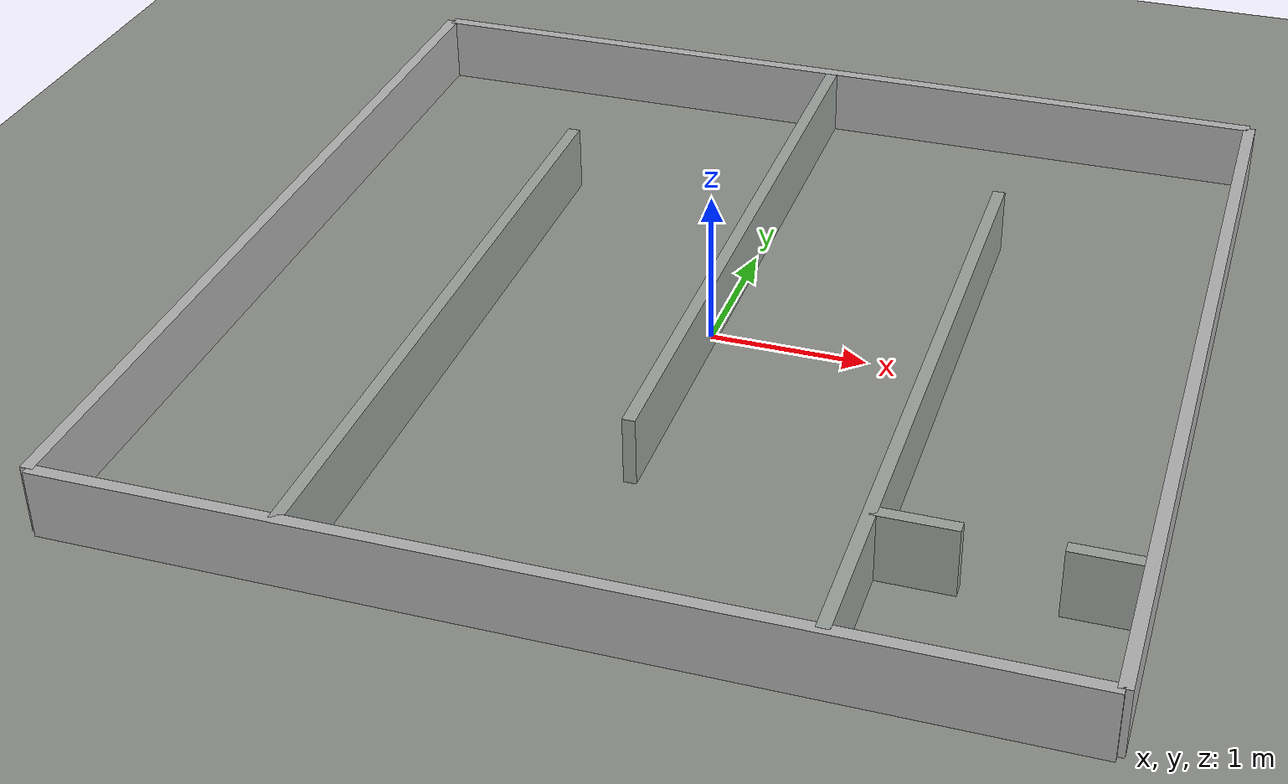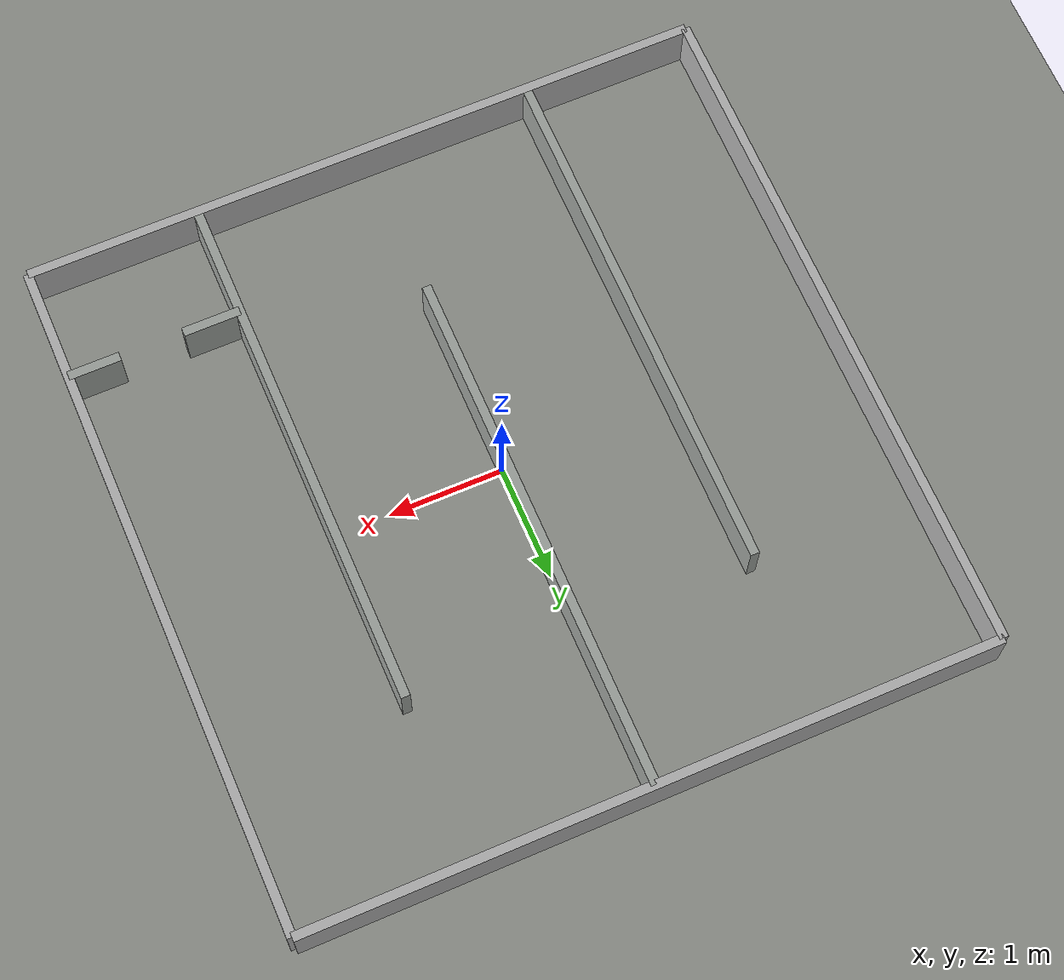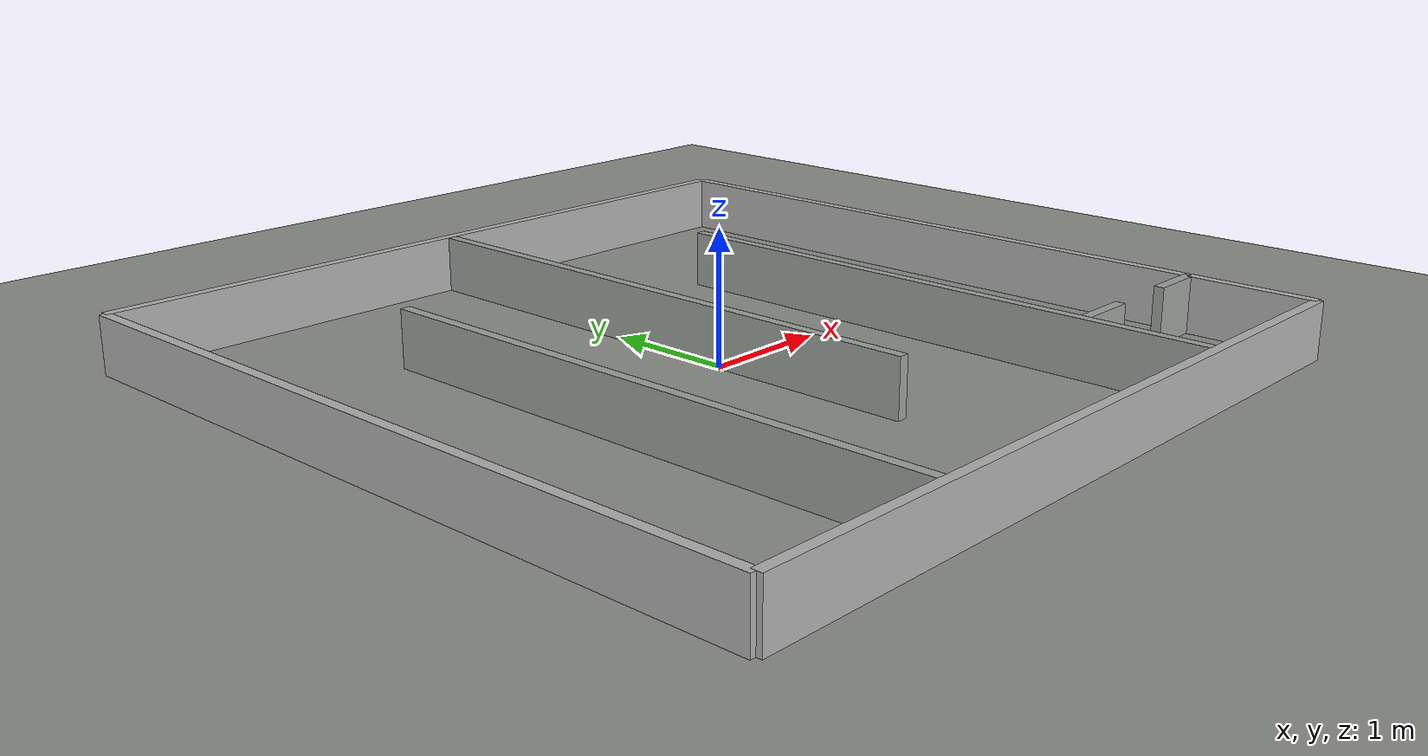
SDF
<?xml version="1.0" ?>
<sdf version="1.8">
  <world name="rosy_maze">
    <physics name="1ms" type="ignored">
      <max_step_size>0.001</max_step_size>
      <real_time_factor>1.0</real_time_factor>
    </physics>

    <plugin filename="gz-sim-physics-system" name="gz::sim::systems::Physics"></plugin>
    <plugin filename="gz-sim-sensors-system" name="gz::sim::systems::Sensors">
      <render_engine>ogre2</render_engine>
    </plugin>
    <plugin filename="gz-sim-user-commands-system" name="gz::sim::systems::UserCommands"></plugin>
    <plugin filename="gz-sim-scene-broadcaster-system" name="gz::sim::systems::SceneBroadcaster"></plugin>
    <plugin filename="gz-sim-imu-system" name="gz::sim::systems::Imu"></plugin>

    <light type="directional" name="sun">
      <cast_shadows>false</cast_shadows>
      <pose>0 0 3 0 0 0</pose>
      <diffuse>1 1 1 1</diffuse>
      <specular>1 1 1 1</specular>
      <attenuation>
        <range>1000</range><constant>1</constant><linear>0</linear><quadratic>0</quadratic>
      </attenuation>
      <direction>0 0 -1</direction>
    </light>

    <model name="ground_plane">
      <static>true</static>
      <link name="ground_link">
        <collision name="ground_collision">
          <geometry><plane><normal>0 0 1</normal><size>12 12</size></plane></geometry>
        </collision>
        <visual name="ground_visual">
          <geometry><plane><normal>0 0 1</normal><size>12 12</size></plane></geometry>
          <material>
            <diffuse>0.55 0.56 0.54 1</diffuse>
            <specular>0.1 0.1 0.1 1</specular>
          </material>
        </visual>
      </link>
    </model>

    <!-- 바깥 벽 6 x 6 -->
    <model name="wall_front">
      <static>true</static><pose>0 3 0.22 0 0 0</pose>
      <link name="l"><visual name="v"><geometry><box><size>6 0.08 0.44</size></box></geometry>
        <material><diffuse>0.7 0.7 0.7 1</diffuse></material></visual>
        <collision name="c"><geometry><box><size>6 0.08 0.44</size></box></geometry></collision></link>
    </model>
    <model name="wall_back">
      <static>true</static><pose>0 -3 0.22 0 0 0</pose>
      <link name="l"><visual name="v"><geometry><box><size>6 0.08 0.44</size></box></geometry>
        <material><diffuse>0.7 0.7 0.7 1</diffuse></material></visual>
        <collision name="c"><geometry><box><size>6 0.08 0.44</size></box></geometry></collision></link>
    </model>
    <model name="wall_left">
      <static>true</static><pose>-3 0 0.22 0 0 1.5708</pose>
      <link name="l"><visual name="v"><geometry><box><size>6 0.08 0.44</size></box></geometry>
        <material><diffuse>0.7 0.7 0.7 1</diffuse></material></visual>
        <collision name="c"><geometry><box><size>6 0.08 0.44</size></box></geometry></collision></link>
    </model>
    <model name="wall_right">
      <static>true</static><pose>3 0 0.22 0 0 1.5708</pose>
      <link name="l"><visual name="v"><geometry><box><size>6 0.08 0.44</size></box></geometry>
        <material><diffuse>0.7 0.7 0.7 1</diffuse></material></visual>
        <collision name="c"><geometry><box><size>6 0.08 0.44</size></box></geometry></collision></link>
    </model>

    <!-- 뱀형 칸막이. V1/V3 은 위가 열리고 V2 는 아래가 열린다 -->
    <model name="maze_v1">
      <static>true</static><pose>-1.5 -0.7 0.22 0 0 1.5708</pose>
      <link name="l"><visual name="v"><geometry><box><size>4.6 0.08 0.44</size></box></geometry>
        <material><diffuse>0.62 0.64 0.62 1</diffuse></material></visual>
        <collision name="c"><geometry><box><size>4.6 0.08 0.44</size></box></geometry></collision></link>
    </model>
    <model name="maze_v2">
      <static>true</static><pose>0 0.7 0.22 0 0 1.5708</pose>
      <link name="l"><visual name="v"><geometry><box><size>4.6 0.08 0.44</size></box></geometry>
        <material><diffuse>0.62 0.64 0.62 1</diffuse></material></visual>
        <collision name="c"><geometry><box><size>4.6 0.08 0.44</size></box></geometry></collision></link>
    </model>
    <model name="maze_v3">
      <static>true</static><pose>1.5 -0.7 0.22 0 0 1.5708</pose>
      <link name="l"><visual name="v"><geometry><box><size>4.6 0.08 0.44</size></box></geometry>
        <material><diffuse>0.62 0.64 0.62 1</diffuse></material></visual>
        <collision name="c"><geometry><box><size>4.6 0.08 0.44</size></box></geometry></collision></link>
    </model>

    <!-- 폭 0.55 m 문: y=-2.0 에서 x 2.0..2.55 만 비운다 -->
    <model name="door_wall_left">
      <static>true</static><pose>1.75 -2.0 0.22 0 0 0</pose>
      <link name="l"><visual name="v"><geometry><box><size>0.5 0.08 0.44</size></box></geometry>
        <material><diffuse>0.62 0.64 0.62 1</diffuse></material></visual>
        <collision name="c"><geometry><box><size>0.5 0.08 0.44</size></box></geometry></collision></link>
    </model>
    <model name="door_wall_right">
      <static>true</static><pose>2.775 -2.0 0.22 0 0 0</pose>
      <link name="l"><visual name="v"><geometry><box><size>0.45 0.08 0.44</size></box></geometry>
        <material><diffuse>0.62 0.64 0.62 1</diffuse></material></visual>
        <collision name="c"><geometry><box><size>0.45 0.08 0.44</size></box></geometry></collision></link>
    </model>

  </world>
</sdf>
